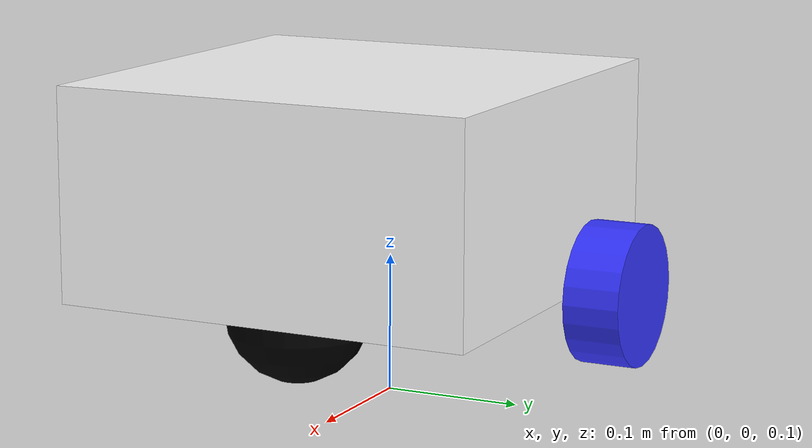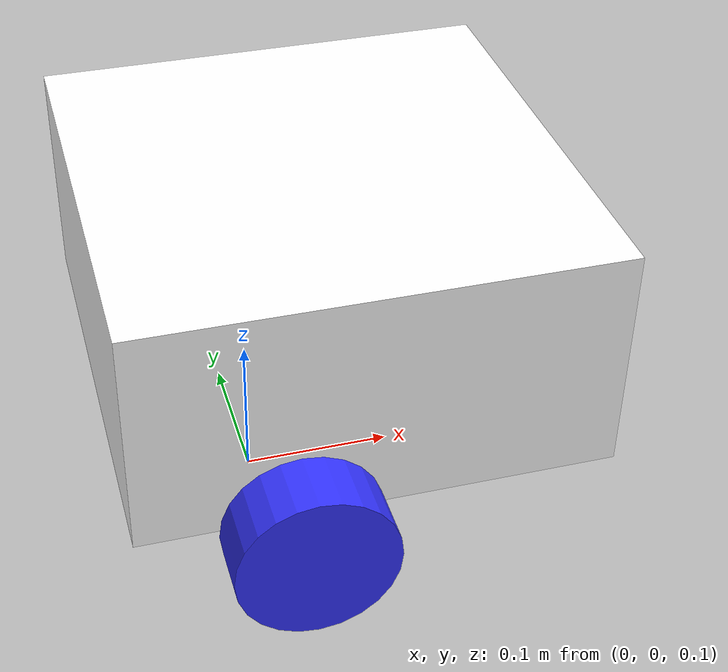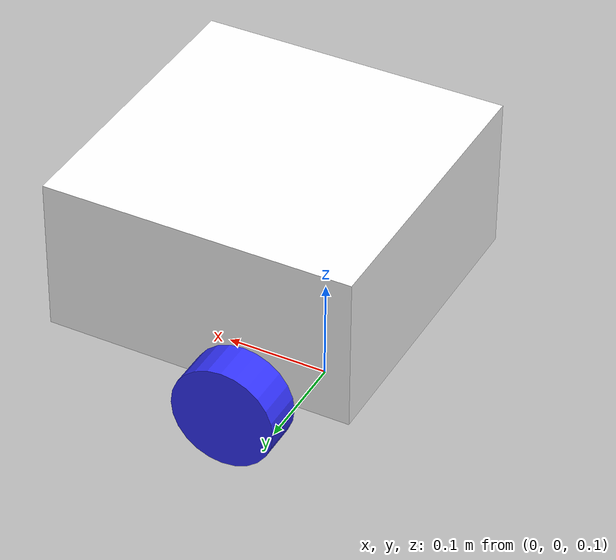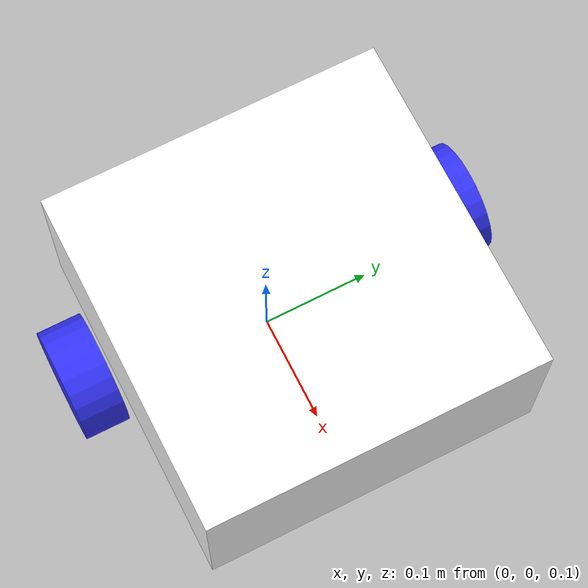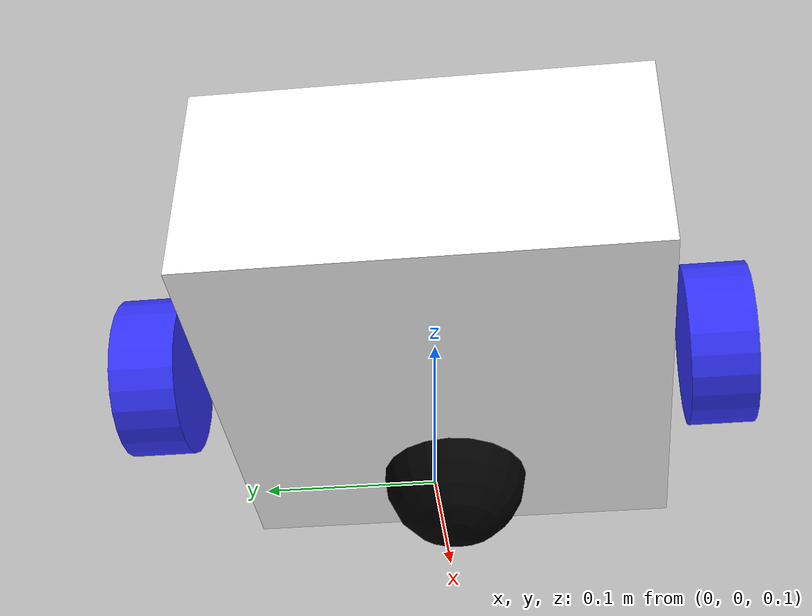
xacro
<?xml version="1.0"?>
<robot xmlns:xacro="http://www.ros.org/wiki/xacro" >

    <xacro:include filename="inertial_macros.xacro"/>

    <!-- Define the shape of the robot's two back wheels in meters -->
    <xacro:property name="wheel_radius" value="0.14"/>
    <xacro:property name="wheel_width" value="0.06"/>

    <!-- Position the wheels along the z-axis -->
    <xacro:property name="wheel_zoff" value="0.05"/>

    <material name="white">
        <color rgba="1 1 1 1" />
    </material>

    <material name="orange">
        <color rgba="1 0.3 0.1 1"/>
    </material>

    <material name="blue">
        <color rgba="0.2 0.2 1 1"/>
    </material>

    <material name="black">
        <color rgba="0 0 0 1"/>
    </material>

    <!-- ****************** ROBOT BASE FOOTPRINT ***************************  -->
    <!-- Define the center of the main robot chassis projected on the ground -->
    <link name="base_footprint"/>

    <!-- The base footprint of the robot is located underneath the chassis -->
    <joint name="base_joint" type="fixed">
        <parent link="base_footprint"/>
        <child link="base_link" />
        <origin xyz="0.0 0.0 ${(wheel_radius+wheel_zoff)}" rpy="0 0 0"/>
    </joint>

    <!-- BASE LINK -->
    <link name="base_link">
    </link>

    <!-- CHASSIS LINK -->

    <joint name="chassis_joint" type="fixed">
        <parent link="base_link"/>
        <child link="chassis"/>
        <origin xyz="-0.1 0 0"/>
    </joint>

    <link name="chassis">
        <visual>
            <origin xyz="0.15 0 0.075"/>
            <geometry>
                <box size="0.3 0.3 0.15"/>
            </geometry>
            <material name="white"/>
        </visual>
        <collision>
            <origin xyz="0.15 0 0.075"/>
            <geometry>
                <box size="0.3 0.3 0.15"/>
            </geometry>
        </collision>
        <xacro:inertial_box mass="0.5" x="0.3" y="0.3" z="0.15">
            <origin xyz="0.15 0 0.075" rpy="0 0 0"/>
        </xacro:inertial_box>
    </link>

    <gazebo reference="chassis">
	    <material>Gazebo/White</material>
    </gazebo>

    <!-- LEFT WHEEL LINK -->

    <joint name="left_wheel_joint" type="continuous">
        <parent link="base_link"/>
        <child link="left_wheel"/>
        <origin xyz="0 0.175 0" rpy="-${pi/2} 0 0" />
        <axis xyz="0 0 1"/>
    </joint>

    <link name="left_wheel">
        <visual>
            <geometry>
                <cylinder radius="0.05" length="0.04"/>
            </geometry>
            <material name="blue"/>
        </visual>
        <collision>
            <geometry>
                <cylinder radius="0.05" length="0.04"/>
            </geometry>
        </collision>
        <xacro:inertial_cylinder mass="0.1" length="0.04" radius="0.05">
            <origin xyz="0 0 0" rpy="0 0 0"/>
        </xacro:inertial_cylinder>
    </link>

    <gazebo reference="left_wheel">
	    <material>Gazebo/White</material>
    </gazebo>

    <!-- RIGHT WHEEL LINK -->

    <joint name="right_wheel_joint" type="continuous">
        <parent link="base_link"/>
        <child link="right_wheel"/>
        <origin xyz="0 -0.175 0" rpy="${pi/2} 0 0" />
        <axis xyz="0 0 -1"/>
    </joint>

    <link name="right_wheel">
        <visual>
            <geometry>
                <cylinder radius="0.05" length="0.04"/>
            </geometry>
            <material name="blue"/>
        </visual>
        <collision>
            <geometry>
                <cylinder radius="0.05" length="0.04"/>
            </geometry>
        </collision>
        <xacro:inertial_cylinder mass="0.1" length="0.04" radius="0.05">
            <origin xyz="0 0 0" rpy="0 0 0"/>
        </xacro:inertial_cylinder>
    </link>

    <gazebo reference="right_wheel">
	    <material>Gazebo/Blue</material>
    </gazebo>

    <!-- CASTER WHEEL LINK -->

    <joint name="caster_wheel_joint" type="fixed">
        <parent link="chassis"/>
        <child link="caster_wheel"/>
        <origin xyz="0.24 0 0"/>
    </joint>

    <link name="caster_wheel">
        <visual>
            <geometry>
                <sphere radius="0.05"/>
            </geometry>
            <material name="black"/>
        </visual>
        <collision>
            <geometry>
                <sphere radius="0.05"/>
            </geometry>
        </collision>
        <xacro:inertial_sphere mass="0.1" radius="0.05">
            <origin xyz="0 0 0" rpy="0 0 0"/>
        </xacro:inertial_sphere>
    </link>

    <!-- With Gazebo, we have the ability to customise some physical properties of the link, including the friction coefficients. -->
    <gazebo reference="caster_wheel">
	    <material>Gazebo/Black</material>
	    <mu1 value="0.001"/>
	    <mu2 value="0.001"/>
    </gazebo>

</robot>

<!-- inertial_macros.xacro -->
<robot xmlns:xacro="http://www.ros.org/wiki/xacro" >

    <!-- Specify some standard inertial calculations https://en.wikipedia.org/wiki/List_of_moments_of_inertia -->
    <!-- These make use of xacro's mathematical functionality -->

    <xacro:macro name="inertial_sphere" params="mass radius *origin">
        <inertial>
            <xacro:insert_block name="origin"/>
            <mass value="${mass}" />
            <inertia ixx="${(2/5) * mass * (radius*radius)}" ixy="0.0" ixz="0.0"
                    iyy="${(2/5) * mass * (radius*radius)}" iyz="0.0"
                    izz="${(2/5) * mass * (radius*radius)}" />
        </inertial>
    </xacro:macro>

    <xacro:macro name="inertial_box" params="mass x y z *origin">
        <inertial>
            <xacro:insert_block name="origin"/>
            <mass value="${mass}" />
            <inertia ixx="${(1/12) * mass * (y*y+z*z)}" ixy="0.0" ixz="0.0"
                    iyy="${(1/12) * mass * (x*x+z*z)}" iyz="0.0"
                    izz="${(1/12) * mass * (x*x+y*y)}" />
        </inertial>
    </xacro:macro>

    <xacro:macro name="inertial_cylinder" params="mass length radius *origin">
        <inertial>
            <xacro:insert_block name="origin"/>
            <mass value="${mass}" />
            <inertia ixx="${(1/12) * mass * (3*radius*radius + length*length)}" ixy="0.0" ixz="0.0"
                    iyy="${(1/12) * mass * (3*radius*radius + length*length)}" iyz="0.0"
                    izz="${(1/2) * mass * (radius*radius)}" />
        </inertial>
    </xacro:macro>

</robot>
